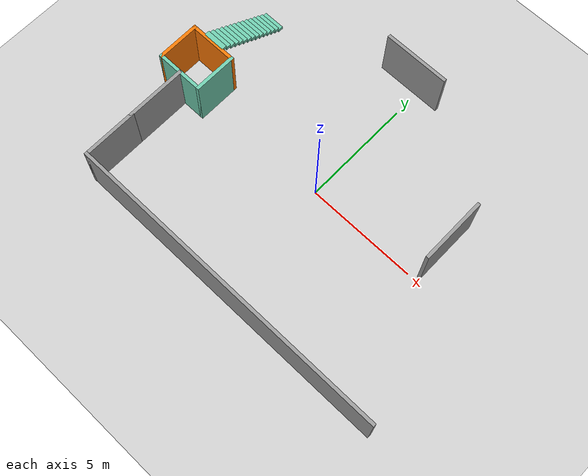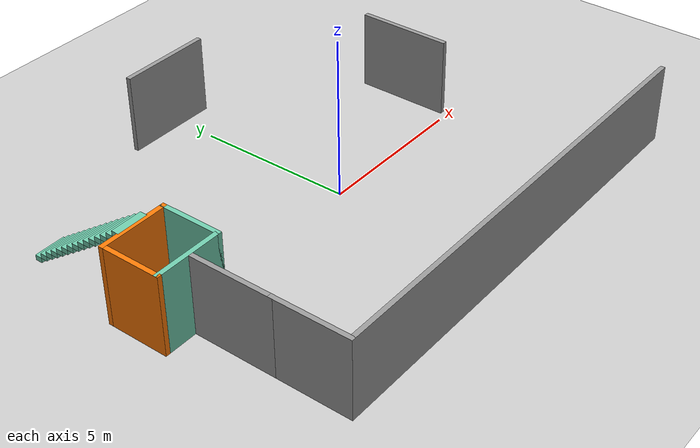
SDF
<sdf version="1.6">
 <world name="default">
  <light name="sun" type="directional">
   <pose>0 0 10 0 -0 0</pose>
   <diffuse>0.8 0.8 0.8 1</diffuse>
   <specular>0.2 0.2 0.2 1</specular>
   <attenuation>
    <range>1000</range>
    <constant>0.9</constant>
    <linear>0.01</linear>
    <quadratic>0.001</quadratic>
   </attenuation>
   <direction>-0.5 0.1 -0.9</direction>
  </light>
  <model name="ground_plane">
   <static>1</static>
   <link name="link">
    <collision name="collision">
     <geometry><plane><normal>0 0 1</normal><size>100 100</size></plane></geometry>
     <surface>
      <contact><collide_bitmask>65535</collide_bitmask></contact>
      <friction><ode><mu>100</mu><mu2>50</mu2></ode></friction>
     </surface>
    </collision>
    <visual name="visual">
     <cast_shadows>0</cast_shadows>
     <geometry><plane><normal>0 0 1</normal><size>100 100</size></plane></geometry>
     <material>
      <script><uri>file://media/materials/scripts/gazebo.material</uri><name>Gazebo/Grey</name></script>
     </material>
    </visual>
   </link>
  </model>
  <gravity>0 0 -9.8</gravity>
  <magnetic_field>6e-06 2.3e-05 -4.2e-05</magnetic_field>
  <atmosphere type="adiabatic"/>
  <physics name="default_physics" default="0" type="ode">
   <max_step_size>0.001</max_step_size>
   <real_time_factor>1</real_time_factor>
   <real_time_update_rate>1000</real_time_update_rate>
  </physics>
  <scene><ambient>0.4 0.4 0.4 1</ambient><background>0.7 0.7 0.7 1</background><shadows>1</shadows></scene>
  <audio><device>default</device></audio>
  <spherical_coordinates>
   <surface_model>EARTH_WGS84</surface_model>
   <latitude_deg>0</latitude_deg>
   <longitude_deg>0</longitude_deg>
   <elevation>0</elevation>
   <heading_deg>0</heading_deg>
  </spherical_coordinates>
  <model name="labirent_ortam">
   <pose>0.08829 0.274883 0 0 -0 0</pose>
   <link name="Stairs_1">
    <visual name="Stairs_1_Visual_0">
     <pose>-6.90247 4.24578 0.083333 0 -0 0</pose>
     <geometry><box><size>1 0.233333 0.166667</size></box></geometry>
     <material>
      <script><uri>file://media/materials/scripts/gazebo.material</uri><name>Gazebo/Grey</name></script>
      <ambient>0.435294 0.796078 0.67451 1</ambient>
     </material>
     <meta><layer>0</layer></meta>
    </visual>
    <collision name="Stairs_1_Collision_0">
     <geometry><box><size>1 0.233333 0.166667</size></box></geometry>
     <pose>-6.90247 4.24578 0.083333 0 -0 0</pose>
    </collision>
    <visual name="Stairs_1_Visual_1">
     <pose>-6.90247 4.01244 0.25 0 -0 0</pose>
     <geometry><box><size>1 0.233333 0.166667</size></box></geometry>
     <material>
      <script><uri>file://media/materials/scripts/gazebo.material</uri><name>Gazebo/Grey</name></script>
      <ambient>0.435294 0.796078 0.67451 1</ambient>
     </material>
     <meta><layer>0</layer></meta>
    </visual>
    <collision name="Stairs_1_Collision_1">
     <geometry><box><size>1 0.233333 0.166667</size></box></geometry>
     <pose>-6.90247 4.01244 0.25 0 -0 0</pose>
    </collision>
    <visual name="Stairs_1_Visual_2">
     <pose>-6.90247 3.77911 0.416667 0 -0 0</pose>
     <geometry><box><size>1 0.233333 0.166667</size></box></geometry>
     <material>
      <script><uri>file://media/materials/scripts/gazebo.material</uri><name>Gazebo/Grey</name></script>
      <ambient>0.435294 0.796078 0.67451 1</ambient>
     </material>
     <meta><layer>0</layer></meta>
    </visual>
    <collision name="Stairs_1_Collision_2">
     <geometry><box><size>1 0.233333 0.166667</size></box></geometry>
     <pose>-6.90247 3.77911 0.416667 0 -0 0</pose>
    </collision>
    <visual name="Stairs_1_Visual_3">
     <pose>-6.90247 3.54578 0.583333 0 -0 0</pose>
     <geometry><box><size>1 0.233333 0.166667</size></box></geometry>
     <material>
      <script><uri>file://media/materials/scripts/gazebo.material</uri><name>Gazebo/Grey</name></script>
      <ambient>0.435294 0.796078 0.67451 1</ambient>
     </material>
     <meta><layer>0</layer></meta>
    </visual>
    <collision name="Stairs_1_Collision_3">
     <geometry><box><size>1 0.233333 0.166667</size></box></geometry>
     <pose>-6.90247 3.54578 0.583333 0 -0 0</pose>
    </collision>
    <visual name="Stairs_1_Visual_4">
     <pose>-6.90247 3.31244 0.75 0 -0 0</pose>
     <geometry><box><size>1 0.233333 0.166667</size></box></geometry>
     <material>
      <script><uri>file://media/materials/scripts/gazebo.material</uri><name>Gazebo/Grey</name></script>
      <ambient>0.435294 0.796078 0.67451 1</ambient>
     </material>
     <meta><layer>0</layer></meta>
    </visual>
    <collision name="Stairs_1_Collision_4">
     <geometry><box><size>1 0.233333 0.166667</size></box></geometry>
     <pose>-6.90247 3.31244 0.75 0 -0 0</pose>
    </collision>
    <visual name="Stairs_1_Visual_5">
     <pose>-6.90247 3.07911 0.916667 0 -0 0</pose>
     <geometry><box><size>1 0.233333 0.166667</size></box></geometry>
     <material>
      <script><uri>file://media/materials/scripts/gazebo.material</uri><name>Gazebo/Grey</name></script>
      <ambient>0.435294 0.796078 0.67451 1</ambient>
     </material>
     <meta><layer>0</layer></meta>
    </visual>
    <collision name="Stairs_1_Collision_5">
     <geometry><box><size>1 0.233333 0.166667</size></box></geometry>
     <pose>-6.90247 3.07911 0.916667 0 -0 0</pose>
    </collision>
    <visual name="Stairs_1_Visual_6">
     <pose>-6.90247 2.84578 1.08333 0 -0 0</pose>
     <geometry><box><size>1 0.233333 0.166667</size></box></geometry>
     <material>
      <script><uri>file://media/materials/scripts/gazebo.material</uri><name>Gazebo/Grey</name></script>
      <ambient>0.435294 0.796078 0.67451 1</ambient>
     </material>
     <meta><layer>0</layer></meta>
    </visual>
    <collision name="Stairs_1_Collision_6">
     <geometry><box><size>1 0.233333 0.166667</size></box></geometry>
     <pose>-6.90247 2.84578 1.08333 0 -0 0</pose>
    </collision>
    <visual name="Stairs_1_Visual_7">
     <pose>-6.90247 2.61244 1.25 0 -0 0</pose>
     <geometry><box><size>1 0.233333 0.166667</size></box></geometry>
     <material>
      <script><uri>file://media/materials/scripts/gazebo.material</uri><name>Gazebo/Grey</name></script>
      <ambient>0.435294 0.796078 0.67451 1</ambient>
     </material>
     <meta><layer>0</layer></meta>
    </visual>
    <collision name="Stairs_1_Collision_7">
     <geometry><box><size>1 0.233333 0.166667</size></box></geometry>
     <pose>-6.90247 2.61244 1.25 0 -0 0</pose>
    </collision>
    <visual name="Stairs_1_Visual_8">
     <pose>-6.90247 2.37911 1.41667 0 -0 0</pose>
     <geometry><box><size>1 0.233333 0.166667</size></box></geometry>
     <material>
      <script><uri>file://media/materials/scripts/gazebo.material</uri><name>Gazebo/Grey</name></script>
      <ambient>0.435294 0.796078 0.67451 1</ambient>
     </material>
     <meta><layer>0</layer></meta>
    </visual>
    <collision name="Stairs_1_Collision_8">
     <geometry><box><size>1 0.233333 0.166667</size></box></geometry>
     <pose>-6.90247 2.37911 1.41667 0 -0 0</pose>
    </collision>
    <visual name="Stairs_1_Visual_9">
     <pose>-6.90247 2.14578 1.58333 0 -0 0</pose>
     <geometry><box><size>1 0.233333 0.166667</size></box></geometry>
     <material>
      <script><uri>file://media/materials/scripts/gazebo.material</uri><name>Gazebo/Grey</name></script>
      <ambient>0.435294 0.796078 0.67451 1</ambient>
     </material>
     <meta><layer>0</layer></meta>
    </visual>
    <collision name="Stairs_1_Collision_9">
     <geometry><box><size>1 0.233333 0.166667</size></box></geometry>
     <pose>-6.90247 2.14578 1.58333 0 -0 0</pose>
    </collision>
    <visual name="Stairs_1_Visual_10">
     <pose>-6.90247 1.91244 1.75 0 -0 0</pose>
     <geometry><box><size>1 0.233333 0.166667</size></box></geometry>
     <material>
      <script><uri>file://media/materials/scripts/gazebo.material</uri><name>Gazebo/Grey</name></script>
      <ambient>0.435294 0.796078 0.67451 1</ambient>
     </material>
     <meta><layer>0</layer></meta>
    </visual>
    <collision name="Stairs_1_Collision_10">
     <geometry><box><size>1 0.233333 0.166667</size></box></geometry>
     <pose>-6.90247 1.91244 1.75 0 -0 0</pose>
    </collision>
    <visual name="Stairs_1_Visual_11">
     <pose>-6.90247 1.67911 1.91667 0 -0 0</pose>
     <geometry><box><size>1 0.233333 0.166667</size></box></geometry>
     <material>
      <script><uri>file://media/materials/scripts/gazebo.material</uri><name>Gazebo/Grey</name></script>
      <ambient>0.435294 0.796078 0.67451 1</ambient>
     </material>
     <meta><layer>0</layer></meta>
    </visual>
    <collision name="Stairs_1_Collision_11">
     <geometry><box><size>1 0.233333 0.166667</size></box></geometry>
     <pose>-6.90247 1.67911 1.91667 0 -0 0</pose>
    </collision>
    <visual name="Stairs_1_Visual_12">
     <pose>-6.90247 1.44578 2.08333 0 -0 0</pose>
     <geometry><box><size>1 0.233333 0.166667</size></box></geometry>
     <material>
      <script><uri>file://media/materials/scripts/gazebo.material</uri><name>Gazebo/Grey</name></script>
      <ambient>0.435294 0.796078 0.67451 1</ambient>
     </material>
     <meta><layer>0</layer></meta>
    </visual>
    <collision name="Stairs_1_Collision_12">
     <geometry><box><size>1 0.233333 0.166667</size></box></geometry>
     <pose>-6.90247 1.44578 2.08333 0 -0 0</pose>
    </collision>
    <visual name="Stairs_1_Visual_13">
     <pose>-6.90247 1.21244 2.25 0 -0 0</pose>
     <geometry><box><size>1 0.233333 0.166667</size></box></geometry>
     <material>
      <script><uri>file://media/materials/scripts/gazebo.material</uri><name>Gazebo/Grey</name></script>
      <ambient>0.435294 0.796078 0.67451 1</ambient>
     </material>
     <meta><layer>0</layer></meta>
    </visual>
    <collision name="Stairs_1_Collision_13">
     <geometry><box><size>1 0.233333 0.166667</size></box></geometry>
     <pose>-6.90247 1.21244 2.25 0 -0 0</pose>
    </collision>
    <visual name="Stairs_1_Visual_14">
     <pose>-6.90247 0.979109 2.41667 0 -0 0</pose>
     <geometry><box><size>1 0.233333 0.166667</size></box></geometry>
     <material>
      <script><uri>file://media/materials/scripts/gazebo.material</uri><name>Gazebo/Grey</name></script>
      <ambient>0.435294 0.796078 0.67451 1</ambient>
     </material>
     <meta><layer>0</layer></meta>
    </visual>
    <collision name="Stairs_1_Collision_14">
     <geometry><box><size>1 0.233333 0.166667</size></box></geometry>
     <pose>-6.90247 0.979109 2.41667 0 -0 0</pose>
    </collision>
   </link>
   <link name="Wall_1">
    <collision name="Wall_1_Collision">
     <geometry><box><size>2 0.15 2.5</size></box></geometry>
     <pose>0 0 1.25 0 -0 0</pose>
    </collision>
    <visual name="Wall_1_Visual">
     <pose>0 0 1.25 0 -0 0</pose>
     <geometry><box><size>2 0.15 2.5</size></box></geometry>
     <material>
      <script><uri>file://media/materials/scripts/gazebo.material</uri><name>Gazebo/Grey</name></script>
      <ambient>0.996078 0.47451 0.0196078 1</ambient>
     </material>
     <meta><layer>0</layer></meta>
    </visual>
    <pose>-7.95493 -0.09628 0 0 -0 -1.5708</pose>
   </link>
   <link name="Wall_12">
    <collision name="Wall_12_Collision">
     <geometry><box><size>2.75 0.15 2.5</size></box></geometry>
     <pose>0 0 1.25 0 -0 0</pose>
    </collision>
    <visual name="Wall_12_Visual">
     <pose>0 0 1.25 0 -0 0</pose>
     <geometry><box><size>2.75 0.15 2.5</size></box></geometry>
     <material>
      <script><uri>file://media/materials/scripts/gazebo.material</uri><name>Gazebo/Grey</name></script>
      <ambient>1 1 1 1</ambient>
     </material>
     <meta><layer>0</layer></meta>
    </visual>
    <pose>-6.89507 -2.35922 0 0 -0 -1.5708</pose>
   </link>
   <link name="Wall_14">
    <collision name="Wall_14_Collision">
     <geometry><box><size>2.5 0.15 2.5</size></box></geometry>
     <pose>0 0 1.25 0 -0 0</pose>
    </collision>
    <visual name="Wall_14_Visual">
     <pose>0 0 1.25 0 -0 0</pose>
     <geometry><box><size>2.5 0.15 2.5</size></box></geometry>
     <material>
      <script><uri>file://media/materials/scripts/gazebo.material</uri><name>Gazebo/Grey</name></script>
      <ambient>1 1 1 1</ambient>
     </material>
     <meta><layer>0</layer></meta>
    </visual>
    <pose>-6.89507 -4.83422 0 0 -0 -1.5708</pose>
   </link>
   <link name="Wall_15">
    <collision name="Wall_15_Collision">
     <geometry><box><size>15 0.15 2.5</size></box></geometry>
     <pose>0 0 1.25 0 -0 0</pose>
    </collision>
    <visual name="Wall_15_Visual">
     <pose>0 0 1.25 0 -0 0</pose>
     <geometry><box><size>15 0.15 2.5</size></box></geometry>
     <material>
      <script><uri>file://media/materials/scripts/gazebo.material</uri><name>Gazebo/Grey</name></script>
      <ambient>1 1 1 1</ambient>
     </material>
     <meta><layer>0</layer></meta>
    </visual>
    <pose>0.529931 -6.00922 0 0 -0 0</pose>
   </link>
   <link name="Wall_19">
    <collision name="Wall_19_Collision">
     <geometry><box><size>3 0.15 2.5</size></box></geometry>
     <pose>0 0 1.25 0 -0 0</pose>
    </collision>
    <visual name="Wall_19_Visual">
     <pose>0 0 1.25 0 -0 0</pose>
     <geometry><box><size>3 0.15 2.5</size></box></geometry>
     <material>
      <script><uri>file://media/materials/scripts/gazebo.material</uri><name>Gazebo/Grey</name></script>
      <ambient>1 1 1 1</ambient>
     </material>
     <meta><layer>0</layer></meta>
    </visual>
    <pose>-0.513428 6.00922 0 0 -0 0</pose>
   </link>
   <link name="Wall_2">
    <collision name="Wall_2_Collision">
     <geometry><box><size>2.25 0.15 2.5</size></box></geometry>
     <pose>0 0 1.25 0 -0 0</pose>
    </collision>
    <visual name="Wall_2_Visual">
     <pose>0 0 1.25 0 -0 0</pose>
     <geometry><box><size>2.25 0.15 2.5</size></box></geometry>
     <material>
      <script><uri>file://media/materials/scripts/gazebo.material</uri><name>Gazebo/Grey</name></script>
      <ambient>0.435294 0.796078 0.67451 1</ambient>
     </material>
     <meta><layer>0</layer></meta>
    </visual>
    <pose>-6.90493 -1.02128 0 0 -0 0</pose>
   </link>
   <link name="Wall_22">
    <collision name="Wall_22_Collision">
     <geometry><box><size>3 0.15 2.5</size></box></geometry>
     <pose>0 0 1.25 0 -0 0</pose>
    </collision>
    <visual name="Wall_22_Visual">
     <pose>0 0 1.25 0 -0 0</pose>
     <geometry><box><size>3 0.15 2.5</size></box></geometry>
     <material>
      <script><uri>file://media/materials/scripts/gazebo.material</uri><name>Gazebo/Grey</name></script>
      <ambient>1 1 1 1</ambient>
     </material>
     <meta><layer>0</layer></meta>
    </visual>
    <pose>5.31116 1.40082 0 0 -0 -1.5708</pose>
   </link>
   <link name="Wall_3">
    <collision name="Wall_3_Collision">
     <geometry><box><size>2 0.15 2.5</size></box></geometry>
     <pose>0 0 1.25 0 -0 0</pose>
    </collision>
    <visual name="Wall_3_Visual">
     <pose>0 0 1.25 0 -0 0</pose>
     <geometry><box><size>2 0.15 2.5</size></box></geometry>
     <material>
      <script><uri>file://media/materials/scripts/gazebo.material</uri><name>Gazebo/Grey</name></script>
      <ambient>0.435294 0.796078 0.67451 1</ambient>
     </material>
     <meta><layer>0</layer></meta>
    </visual>
    <pose>-5.85493 -0.09628 0 0 -0 1.5708</pose>
   </link>
   <link name="Wall_4">
    <collision name="Wall_4_Collision">
     <geometry><box><size>2.25 0.15 2.5</size></box></geometry>
     <pose>0 0 1.25 0 -0 0</pose>
    </collision>
    <visual name="Wall_4_Visual">
     <pose>0 0 1.25 0 -0 0</pose>
     <geometry><box><size>2.25 0.15 2.5</size></box></geometry>
     <material>
      <script><uri>file://media/materials/scripts/gazebo.material</uri><name>Gazebo/Grey</name></script>
      <ambient>0.996078 0.47451 0.0196078 1</ambient>
     </material>
     <meta><layer>0</layer></meta>
    </visual>
    <pose>-6.90493 0.82872 0 0 -0 3.14159</pose>
   </link>
   <static>1</static>
  </model>
 </world>
</sdf>
